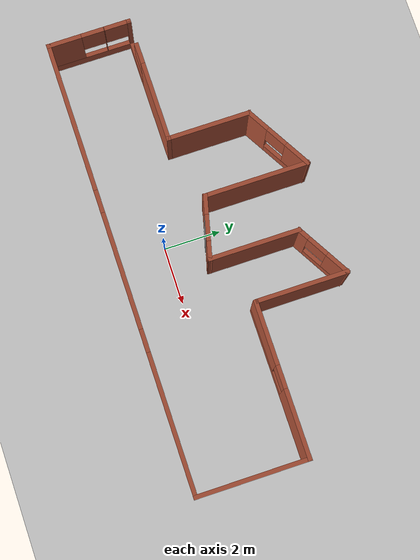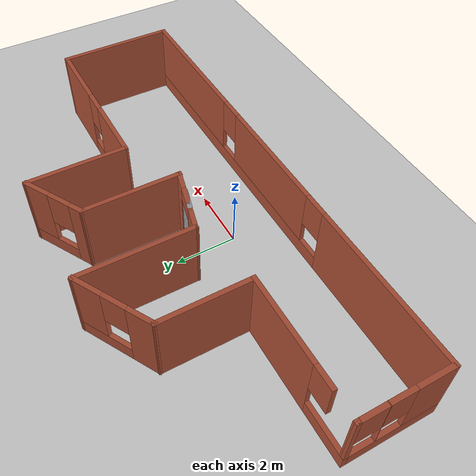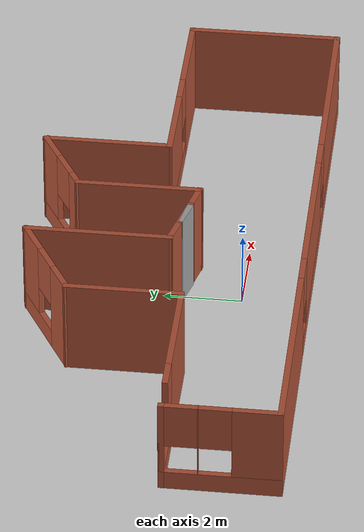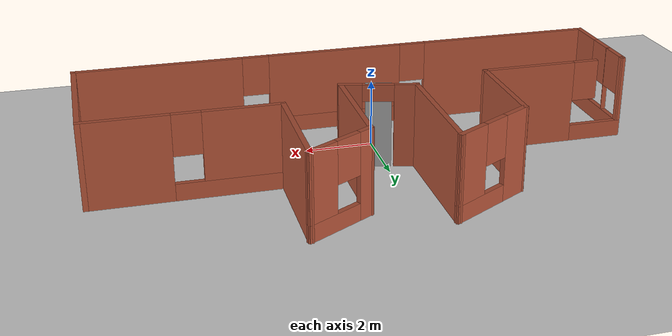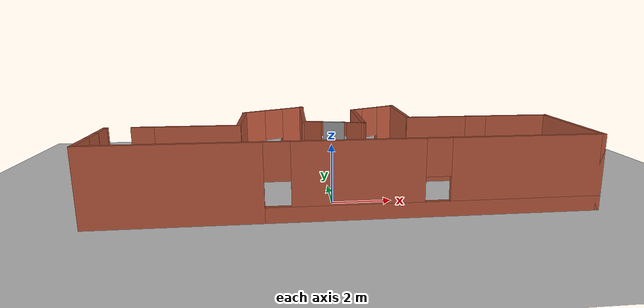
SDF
<sdf version="1.6">
 <world name="default">
  <light name="sun" type="directional">
   <pose>0 0 10 0 -0 0</pose>
   <diffuse>0.8 0.8 0.8 1</diffuse>
   <specular>0.1 0.1 0.1 1</specular>
   <attenuation>
    <range>1000</range>
    <constant>0.9</constant>
    <linear>0.01</linear>
    <quadratic>0.001</quadratic>
   </attenuation>
   <direction>-0.5 0.5 -1</direction>
  </light>
  <model name="ground_plane">
   <static>1</static>
   <link name="link">
    <collision name="collision">
     <geometry><plane><normal>0 0 1</normal><size>100 100</size></plane></geometry>
     <surface><friction><ode><mu>100</mu><mu2>50</mu2></ode></friction></surface>
    </collision>
    <visual name="visual">
     <cast_shadows>0</cast_shadows>
     <geometry><plane><normal>0 0 1</normal><size>100 100</size></plane></geometry>
     <material>
      <script><uri>file://media/materials/scripts/gazebo.material</uri><name>Gazebo/Grey</name></script>
     </material>
    </visual>
   </link>
  </model>
  <gravity>0 0 -9.8</gravity>
  <magnetic_field>6e-06 2.3e-05 -4.2e-05</magnetic_field>
  <atmosphere type="adiabatic"/>
  <physics name="default_physics" default="0" type="ode">
   <max_step_size>0.001</max_step_size>
   <real_time_factor>1</real_time_factor>
   <real_time_update_rate>1000</real_time_update_rate>
  </physics>
  <scene><ambient>0.4 0.4 0.4 1</ambient><background>0.7 0.7 0.7 1</background><shadows>1</shadows></scene>
  <spherical_coordinates>
   <surface_model>EARTH_WGS84</surface_model>
   <latitude_deg>0</latitude_deg>
   <longitude_deg>0</longitude_deg>
   <elevation>0</elevation>
   <heading_deg>0</heading_deg>
  </spherical_coordinates>
  <model name="building_1">
   <pose>0.49094 1.87309 0 0 -0 0</pose>
   <link name="Wall_10">
    <collision name="Wall_10_Collision">
     <geometry><box><size>3 0.15 2.5</size></box></geometry>
     <pose>0 0 1.25 0 -0 0</pose>
    </collision>
    <visual name="Wall_10_Visual">
     <pose>0 0 1.25 0 -0 0</pose>
     <geometry><box><size>3 0.15 2.5</size></box></geometry>
     <material>
      <script><uri>file://media/materials/scripts/gazebo.material</uri><name>Gazebo/Bricks</name></script>
      <ambient>1 1 1 1</ambient>
     </material>
    </visual>
    <pose>-3.575 0.747412 0 0 0 -1.5708</pose>
   </link>
   <link name="Wall_12">
    <collision name="Wall_12_Collision">
     <geometry><box><size>3.25 0.15 2.5</size></box></geometry>
     <pose>0 0 1.25 0 -0 0</pose>
    </collision>
    <visual name="Wall_12_Visual">
     <pose>0 0 1.25 0 -0 0</pose>
     <geometry><box><size>3.25 0.15 2.5</size></box></geometry>
     <material>
      <script><uri>file://media/materials/scripts/gazebo.material</uri><name>Gazebo/Bricks</name></script>
      <ambient>1 1 1 1</ambient>
     </material>
    </visual>
    <pose>0.749575 0.900137 0 0 0 -1.5708</pose>
   </link>
   <link name="Wall_14">
    <pose>1.6589 2.97514 0 0 -0 0.523599</pose>
    <visual name="Wall_14_Visual_0">
     <pose>-0.875182 0 1.25 0 -0 0</pose>
     <geometry><box><size>0.499636 0.15 2.5</size></box></geometry>
     <material>
      <script><uri>file://media/materials/scripts/gazebo.material</uri><name>Gazebo/Bricks</name></script>
      <ambient>1 1 1 1</ambient>
     </material>
    </visual>
    <collision name="Wall_14_Collision_0">
     <geometry><box><size>0.499636 0.15 2.5</size></box></geometry>
     <pose>-0.875182 0 1.25 0 -0 0</pose>
    </collision>
    <visual name="Wall_14_Visual_1">
     <pose>0.249818 0 0.25 0 -0 0</pose>
     <geometry><box><size>1.75036 0.15 0.5</size></box></geometry>
     <material>
      <script><uri>file://media/materials/scripts/gazebo.material</uri><name>Gazebo/Bricks</name></script>
      <ambient>1 1 1 1</ambient>
     </material>
    </visual>
    <collision name="Wall_14_Collision_1">
     <geometry><box><size>1.75036 0.15 0.5</size></box></geometry>
     <pose>0.249818 0 0.25 0 -0 0</pose>
    </collision>
    <visual name="Wall_14_Visual_2">
     <pose>0.649818 0 1.5 0 -0 0</pose>
     <geometry><box><size>0.950364 0.15 2</size></box></geometry>
     <material>
      <script><uri>file://media/materials/scripts/gazebo.material</uri><name>Gazebo/Bricks</name></script>
      <ambient>1 1 1 1</ambient>
     </material>
    </visual>
    <collision name="Wall_14_Collision_2">
     <geometry><box><size>0.950364 0.15 2</size></box></geometry>
     <pose>0.649818 0 1.5 0 -0 0</pose>
    </collision>
    <visual name="Wall_14_Visual_3">
     <pose>-0.225364 0 1.9 0 -0 0</pose>
     <geometry><box><size>0.8 0.15 1.2</size></box></geometry>
     <material>
      <script><uri>file://media/materials/scripts/gazebo.material</uri><name>Gazebo/Bricks</name></script>
      <ambient>1 1 1 1</ambient>
     </material>
    </visual>
    <collision name="Wall_14_Collision_3">
     <geometry><box><size>0.8 0.15 1.2</size></box></geometry>
     <pose>-0.225364 0 1.9 0 -0 0</pose>
    </collision>
   </link>
   <link name="Wall_15">
    <collision name="Wall_15_Collision">
     <geometry><box><size>3.25 0.15 2.5</size></box></geometry>
     <pose>0 0 1.25 0 -0 0</pose>
    </collision>
    <visual name="Wall_15_Visual">
     <pose>0 0 1.25 0 -0 0</pose>
     <geometry><box><size>3.25 0.15 2.5</size></box></geometry>
     <material>
      <script><uri>file://media/materials/scripts/gazebo.material</uri><name>Gazebo/Bricks</name></script>
      <ambient>1 1 1 1</ambient>
     </material>
    </visual>
    <pose>2.56823 1.95014 0 0 0 -1.5708</pose>
   </link>
   <link name="Wall_17">
    <pose>-5.75 -0.677588 0 0 -0 3.14159</pose>
    <visual name="Wall_17_Visual_0">
     <pose>-0.8255 0 1.25 0 -0 0</pose>
     <geometry><box><size>2.849 0.15 2.5</size></box></geometry>
     <material>
      <script><uri>file://media/materials/scripts/gazebo.material</uri><name>Gazebo/Bricks</name></script>
      <ambient>1 1 1 1</ambient>
     </material>
    </visual>
    <collision name="Wall_17_Collision_0">
     <geometry><box><size>2.849 0.15 2.5</size></box></geometry>
     <pose>-0.8255 0 1.25 0 -0 0</pose>
    </collision>
    <visual name="Wall_17_Visual_1">
     <pose>1.4245 0 0.25 0 -0 0</pose>
     <geometry><box><size>1.651 0.15 0.5</size></box></geometry>
     <material>
      <script><uri>file://media/materials/scripts/gazebo.material</uri><name>Gazebo/Bricks</name></script>
      <ambient>1 1 1 1</ambient>
     </material>
    </visual>
    <collision name="Wall_17_Collision_1">
     <geometry><box><size>1.651 0.15 0.5</size></box></geometry>
     <pose>1.4245 0 0.25 0 -0 0</pose>
    </collision>
    <visual name="Wall_17_Visual_2">
     <pose>2.20141 0 1.5 0 -0 0</pose>
     <geometry><box><size>0.097175 0.15 2</size></box></geometry>
     <material>
      <script><uri>file://media/materials/scripts/gazebo.material</uri><name>Gazebo/Bricks</name></script>
      <ambient>1 1 1 1</ambient>
     </material>
    </visual>
    <collision name="Wall_17_Collision_2">
     <geometry><box><size>0.097175 0.15 2</size></box></geometry>
     <pose>2.20141 0 1.5 0 -0 0</pose>
    </collision>
    <visual name="Wall_17_Visual_3">
     <pose>0.975912 0 1.9 0 -0 0</pose>
     <geometry><box><size>0.753825 0.15 1.2</size></box></geometry>
     <material>
      <script><uri>file://media/materials/scripts/gazebo.material</uri><name>Gazebo/Bricks</name></script>
      <ambient>1 1 1 1</ambient>
     </material>
    </visual>
    <collision name="Wall_17_Collision_3">
     <geometry><box><size>0.753825 0.15 1.2</size></box></geometry>
     <pose>0.975912 0 1.9 0 -0 0</pose>
    </collision>
   </link>
   <link name="Wall_18">
    <pose>-7.925 -2.10259 0 0 0 -1.5708</pose>
    <visual name="Wall_18_Visual_0">
     <pose>-1.42456 0 1.25 0 -0 0</pose>
     <geometry><box><size>0.150875 0.15 2.5</size></box></geometry>
     <material>
      <script><uri>file://media/materials/scripts/gazebo.material</uri><name>Gazebo/Bricks</name></script>
      <ambient>1 1 1 1</ambient>
     </material>
    </visual>
    <collision name="Wall_18_Collision_0">
     <geometry><box><size>0.150875 0.15 2.5</size></box></geometry>
     <pose>-1.42456 0 1.25 0 -0 0</pose>
    </collision>
    <visual name="Wall_18_Visual_1">
     <pose>0.075438 0 0.25 0 -0 0</pose>
     <geometry><box><size>2.84912 0.15 0.5</size></box></geometry>
     <material>
      <script><uri>file://media/materials/scripts/gazebo.material</uri><name>Gazebo/Bricks</name></script>
      <ambient>1 1 1 1</ambient>
     </material>
    </visual>
    <collision name="Wall_18_Collision_1">
     <geometry><box><size>2.84912 0.15 0.5</size></box></geometry>
     <pose>0.075438 0 0.25 0 -0 0</pose>
    </collision>
    <visual name="Wall_18_Visual_2">
     <pose>-0.53915 0 1.5 0 -0 0</pose>
     <geometry><box><size>0.01995 0.15 2</size></box></geometry>
     <material>
      <script><uri>file://media/materials/scripts/gazebo.material</uri><name>Gazebo/Bricks</name></script>
      <ambient>1 1 1 1</ambient>
     </material>
    </visual>
    <collision name="Wall_18_Collision_2">
     <geometry><box><size>0.01995 0.15 2</size></box></geometry>
     <pose>-0.53915 0 1.5 0 -0 0</pose>
    </collision>
    <visual name="Wall_18_Visual_3">
     <pose>0.885413 0 1.5 0 -0 0</pose>
     <geometry><box><size>1.22917 0.15 2</size></box></geometry>
     <material>
      <script><uri>file://media/materials/scripts/gazebo.material</uri><name>Gazebo/Bricks</name></script>
      <ambient>1 1 1 1</ambient>
     </material>
    </visual>
    <collision name="Wall_18_Collision_3">
     <geometry><box><size>1.22917 0.15 2</size></box></geometry>
     <pose>0.885413 0 1.5 0 -0 0</pose>
    </collision>
    <visual name="Wall_18_Visual_4">
     <pose>-0.949125 0 1.9 0 -0 0</pose>
     <geometry><box><size>0.8 0.15 1.2</size></box></geometry>
     <material>
      <script><uri>file://media/materials/scripts/gazebo.material</uri><name>Gazebo/Bricks</name></script>
      <ambient>1 1 1 1</ambient>
     </material>
    </visual>
    <collision name="Wall_18_Collision_4">
     <geometry><box><size>0.8 0.15 1.2</size></box></geometry>
     <pose>-0.949125 0 1.9 0 -0 0</pose>
    </collision>
    <visual name="Wall_18_Visual_5">
     <pose>-0.129175 0 1.9 0 -0 0</pose>
     <geometry><box><size>0.8 0.15 1.2</size></box></geometry>
     <material>
      <script><uri>file://media/materials/scripts/gazebo.material</uri><name>Gazebo/Bricks</name></script>
      <ambient>1 1 1 1</ambient>
     </material>
    </visual>
    <collision name="Wall_18_Collision_5">
     <geometry><box><size>0.8 0.15 1.2</size></box></geometry>
     <pose>-0.129175 0 1.9 0 -0 0</pose>
    </collision>
   </link>
   <link name="Wall_19">
    <pose>0 -3.52759 0 0 -0 0</pose>
    <visual name="Wall_19_Visual_0">
     <pose>-5.32317 0 1.25 0 -0 0</pose>
     <geometry><box><size>5.35365 0.15 2.5</size></box></geometry>
     <material>
      <script><uri>file://media/materials/scripts/gazebo.material</uri><name>Gazebo/Bricks</name></script>
      <ambient>1 1 1 1</ambient>
     </material>
    </visual>
    <collision name="Wall_19_Collision_0">
     <geometry><box><size>5.35365 0.15 2.5</size></box></geometry>
     <pose>-5.32317 0 1.25 0 -0 0</pose>
    </collision>
    <visual name="Wall_19_Visual_1">
     <pose>2.67683 0 0.25 0 -0 0</pose>
     <geometry><box><size>10.6463 0.15 0.5</size></box></geometry>
     <material>
      <script><uri>file://media/materials/scripts/gazebo.material</uri><name>Gazebo/Bricks</name></script>
      <ambient>1 1 1 1</ambient>
     </material>
    </visual>
    <collision name="Wall_19_Collision_1">
     <geometry><box><size>10.6463 0.15 0.5</size></box></geometry>
     <pose>2.67683 0 0.25 0 -0 0</pose>
    </collision>
    <visual name="Wall_19_Visual_2">
     <pose>0.200275 0 1.5 0 -0 0</pose>
     <geometry><box><size>4.09325 0.15 2</size></box></geometry>
     <material>
      <script><uri>file://media/materials/scripts/gazebo.material</uri><name>Gazebo/Bricks</name></script>
      <ambient>1 1 1 1</ambient>
     </material>
    </visual>
    <collision name="Wall_19_Collision_2">
     <geometry><box><size>4.09325 0.15 2</size></box></geometry>
     <pose>0.200275 0 1.5 0 -0 0</pose>
    </collision>
    <visual name="Wall_19_Visual_3">
     <pose>5.52345 0 1.5 0 -0 0</pose>
     <geometry><box><size>4.9531 0.15 2</size></box></geometry>
     <material>
      <script><uri>file://media/materials/scripts/gazebo.material</uri><name>Gazebo/Bricks</name></script>
      <ambient>1 1 1 1</ambient>
     </material>
    </visual>
    <collision name="Wall_19_Collision_3">
     <geometry><box><size>4.9531 0.15 2</size></box></geometry>
     <pose>5.52345 0 1.5 0 -0 0</pose>
    </collision>
    <visual name="Wall_19_Visual_4">
     <pose>-2.24635 0 1.9 0 -0 0</pose>
     <geometry><box><size>0.8 0.15 1.2</size></box></geometry>
     <material>
      <script><uri>file://media/materials/scripts/gazebo.material</uri><name>Gazebo/Bricks</name></script>
      <ambient>1 1 1 1</ambient>
     </material>
    </visual>
    <collision name="Wall_19_Collision_4">
     <geometry><box><size>0.8 0.15 1.2</size></box></geometry>
     <pose>-2.24635 0 1.9 0 -0 0</pose>
    </collision>
    <visual name="Wall_19_Visual_5">
     <pose>2.6469 0 1.9 0 -0 0</pose>
     <geometry><box><size>0.8 0.15 1.2</size></box></geometry>
     <material>
      <script><uri>file://media/materials/scripts/gazebo.material</uri><name>Gazebo/Bricks</name></script>
      <ambient>1 1 1 1</ambient>
     </material>
    </visual>
    <collision name="Wall_19_Collision_5">
     <geometry><box><size>0.8 0.15 1.2</size></box></geometry>
     <pose>2.6469 0 1.9 0 -0 0</pose>
    </collision>
   </link>
   <link name="Wall_20">
    <collision name="Wall_20_Collision">
     <geometry><box><size>4 0.15 2.5</size></box></geometry>
     <pose>0 0 1.25 0 -0 0</pose>
    </collision>
    <visual name="Wall_20_Visual">
     <pose>0 0 1.25 0 -0 0</pose>
     <geometry><box><size>4 0.15 2.5</size></box></geometry>
     <material>
      <script><uri>file://media/materials/scripts/gazebo.material</uri><name>Gazebo/Bricks</name></script>
      <ambient>1 1 1 1</ambient>
     </material>
    </visual>
    <pose>7.925 -1.60259 0 0 -0 1.5708</pose>
   </link>
   <link name="Wall_21">
    <pose>5.25 0.322412 0 0 -0 3.14159</pose>
    <visual name="Wall_21_Visual_0">
     <pose>-1.52982 0 1.25 0 -0 0</pose>
     <geometry><box><size>2.44035 0.15 2.5</size></box></geometry>
     <material>
      <script><uri>file://media/materials/scripts/gazebo.material</uri><name>Gazebo/Bricks</name></script>
      <ambient>1 1 1 1</ambient>
     </material>
    </visual>
    <collision name="Wall_21_Collision_0">
     <geometry><box><size>2.44035 0.15 2.5</size></box></geometry>
     <pose>-1.52982 0 1.25 0 -0 0</pose>
    </collision>
    <visual name="Wall_21_Visual_1">
     <pose>1.22018 0 0.25 0 -0 0</pose>
     <geometry><box><size>3.05965 0.15 0.5</size></box></geometry>
     <material>
      <script><uri>file://media/materials/scripts/gazebo.material</uri><name>Gazebo/Bricks</name></script>
      <ambient>1 1 1 1</ambient>
     </material>
    </visual>
    <collision name="Wall_21_Collision_1">
     <geometry><box><size>3.05965 0.15 0.5</size></box></geometry>
     <pose>1.22018 0 0.25 0 -0 0</pose>
    </collision>
    <visual name="Wall_21_Visual_2">
     <pose>1.62017 0 1.5 0 -0 0</pose>
     <geometry><box><size>2.25965 0.15 2</size></box></geometry>
     <material>
      <script><uri>file://media/materials/scripts/gazebo.material</uri><name>Gazebo/Bricks</name></script>
      <ambient>1 1 1 1</ambient>
     </material>
    </visual>
    <collision name="Wall_21_Collision_2">
     <geometry><box><size>2.25965 0.15 2</size></box></geometry>
     <pose>1.62017 0 1.5 0 -0 0</pose>
    </collision>
    <visual name="Wall_21_Visual_3">
     <pose>0.09035 0 1.9 0 -0 0</pose>
     <geometry><box><size>0.8 0.15 1.2</size></box></geometry>
     <material>
      <script><uri>file://media/materials/scripts/gazebo.material</uri><name>Gazebo/Bricks</name></script>
      <ambient>1 1 1 1</ambient>
     </material>
    </visual>
    <collision name="Wall_21_Collision_3">
     <geometry><box><size>0.8 0.15 1.2</size></box></geometry>
     <pose>0.09035 0 1.9 0 -0 0</pose>
    </collision>
   </link>
   <link name="Wall_23">
    <pose>-0.286879 -0.388726 0 0 0 -0.246816</pose>
    <visual name="Wall_23_Visual_0">
     <pose>-0.788997 0 1.25 0 -0 0</pose>
     <geometry><box><size>0.709698 0.15 2.5</size></box></geometry>
     <material>
      <script><uri>file://media/materials/scripts/gazebo.material</uri><name>Gazebo/Bricks</name></script>
      <ambient>1 1 1 1</ambient>
     </material>
    </visual>
    <collision name="Wall_23_Collision_0">
     <geometry><box><size>0.709698 0.15 2.5</size></box></geometry>
     <pose>-0.788997 0 1.25 0 -0 0</pose>
    </collision>
    <visual name="Wall_23_Visual_1">
     <pose>0.804849 0 1.25 0 -0 0</pose>
     <geometry><box><size>0.677993 0.15 2.5</size></box></geometry>
     <material>
      <script><uri>file://media/materials/scripts/gazebo.material</uri><name>Gazebo/Bricks</name></script>
      <ambient>1 1 1 1</ambient>
     </material>
    </visual>
    <collision name="Wall_23_Collision_1">
     <geometry><box><size>0.677993 0.15 2.5</size></box></geometry>
     <pose>0.804849 0 1.25 0 -0 0</pose>
    </collision>
    <visual name="Wall_23_Visual_2">
     <pose>0.015852 0 2.25 0 -0 0</pose>
     <geometry><box><size>0.9 0.15 0.5</size></box></geometry>
     <material>
      <script><uri>file://media/materials/scripts/gazebo.material</uri><name>Gazebo/Bricks</name></script>
      <ambient>1 1 1 1</ambient>
     </material>
    </visual>
    <collision name="Wall_23_Collision_2">
     <geometry><box><size>0.9 0.15 0.5</size></box></geometry>
     <pose>0.015852 0 2.25 0 -0 0</pose>
    </collision>
   </link>
   <link name="Wall_7">
    <pose>-2.44917 2.82241 0 0 -0 0.523599</pose>
    <visual name="Wall_7_Visual_0">
     <pose>-0.914358 0 1.25 0 -0 0</pose>
     <geometry><box><size>0.921285 0.15 2.5</size></box></geometry>
     <material>
      <script><uri>file://media/materials/scripts/gazebo.material</uri><name>Gazebo/Bricks</name></script>
      <ambient>1 1 1 1</ambient>
     </material>
    </visual>
    <collision name="Wall_7_Collision_0">
     <geometry><box><size>0.921285 0.15 2.5</size></box></geometry>
     <pose>-0.914358 0 1.25 0 -0 0</pose>
    </collision>
    <visual name="Wall_7_Visual_1">
     <pose>0.460642 0 0.25 0 -0 0</pose>
     <geometry><box><size>1.82872 0.15 0.5</size></box></geometry>
     <material>
      <script><uri>file://media/materials/scripts/gazebo.material</uri><name>Gazebo/Bricks</name></script>
      <ambient>1 1 1 1</ambient>
     </material>
    </visual>
    <collision name="Wall_7_Collision_1">
     <geometry><box><size>1.82872 0.15 0.5</size></box></geometry>
     <pose>0.460642 0 0.25 0 -0 0</pose>
    </collision>
    <visual name="Wall_7_Visual_2">
     <pose>0.860642 0 1.5 0 -0 0</pose>
     <geometry><box><size>1.02872 0.15 2</size></box></geometry>
     <material>
      <script><uri>file://media/materials/scripts/gazebo.material</uri><name>Gazebo/Bricks</name></script>
      <ambient>1 1 1 1</ambient>
     </material>
    </visual>
    <collision name="Wall_7_Collision_2">
     <geometry><box><size>1.02872 0.15 2</size></box></geometry>
     <pose>0.860642 0 1.5 0 -0 0</pose>
    </collision>
    <visual name="Wall_7_Visual_3">
     <pose>-0.053715 0 1.9 0 -0 0</pose>
     <geometry><box><size>0.8 0.15 1.2</size></box></geometry>
     <material>
      <script><uri>file://media/materials/scripts/gazebo.material</uri><name>Gazebo/Bricks</name></script>
      <ambient>1 1 1 1</ambient>
     </material>
    </visual>
    <collision name="Wall_7_Collision_3">
     <geometry><box><size>0.8 0.15 1.2</size></box></geometry>
     <pose>-0.053715 0 1.9 0 -0 0</pose>
    </collision>
   </link>
   <link name="Wall_8">
    <collision name="Wall_8_Collision">
     <geometry><box><size>3.75 0.15 2.5</size></box></geometry>
     <pose>0 0 1.25 0 -0 0</pose>
    </collision>
    <visual name="Wall_8_Visual">
     <pose>0 0 1.25 0 -0 0</pose>
     <geometry><box><size>3.75 0.15 2.5</size></box></geometry>
     <material>
      <script><uri>file://media/materials/scripts/gazebo.material</uri><name>Gazebo/Bricks</name></script>
      <ambient>1 1 1 1</ambient>
     </material>
    </visual>
    <pose>-1.32333 1.67241 0 0 0 -1.5708</pose>
   </link>
   <static>1</static>
  </model>
  <model name="Building1NoDOor">
   <pose>0.206784 1.47027 0 0 -0 0</pose>
   <link name="Wall_2">
    <collision name="Wall_2_Collision">
     <geometry><box><size>0.75 0.15 2.5</size></box></geometry>
     <pose>0 0 1.25 0 -0 0</pose>
    </collision>
    <visual name="Wall_2_Visual">
     <pose>0 0 1.25 0 -0 0</pose>
     <geometry><box><size>0.75 0.15 2.5</size></box></geometry>
     <material>
      <script><uri>file://media/materials/scripts/gazebo.material</uri><name>Gazebo/Grey</name></script>
      <ambient>1 1 1 1</ambient>
     </material>
     <meta><layer>0</layer></meta>
    </visual>
    <pose>0 0 0 0 -0 2.87979</pose>
   </link>
   <static>1</static>
  </model>
 </world>
</sdf>
